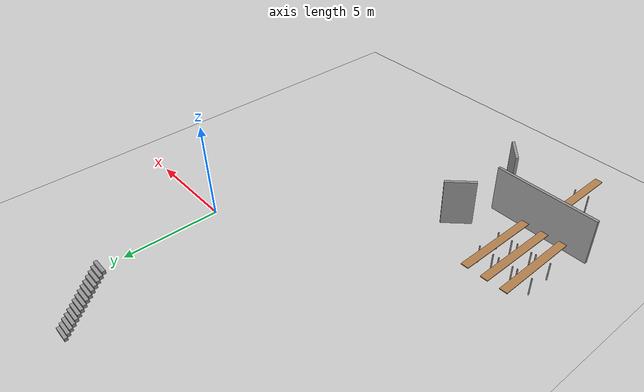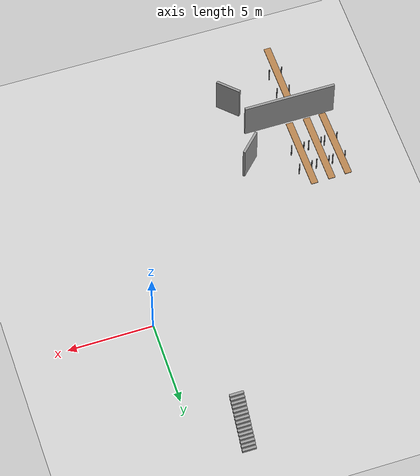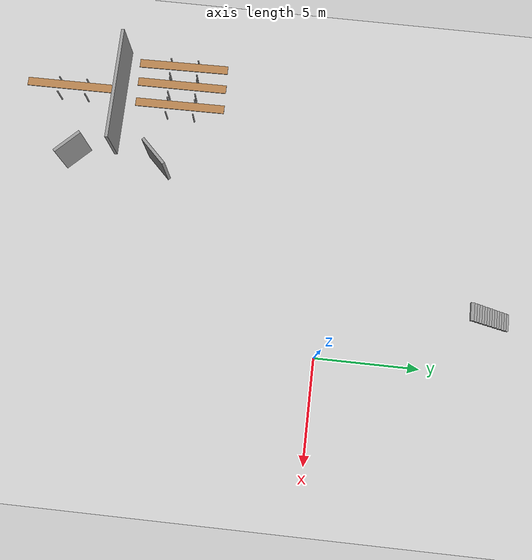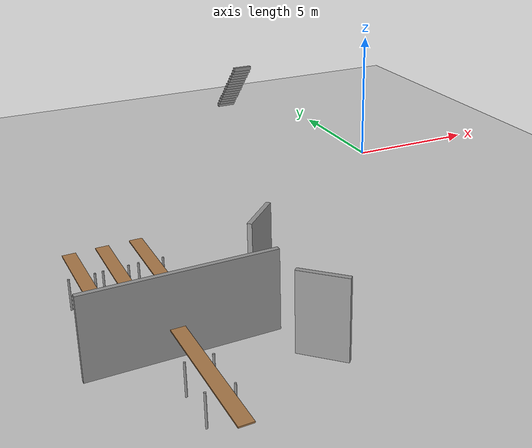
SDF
<sdf version="1.6">
 <world name="default">
  <model name="ground_plane">
   <static>1</static>
   <link name="link">
    <collision name="collision">
     <geometry><plane><normal>0 0 1</normal><size>100 100</size></plane></geometry>
     <surface><friction><ode><mu>100</mu><mu2>50</mu2></ode></friction></surface>
    </collision>
    <visual name="visual">
     <cast_shadows>0</cast_shadows>
     <geometry><plane><normal>0 0 1</normal><size>100 100</size></plane></geometry>
     <material>
      <script><uri>file://media/materials/scripts/gazebo.material</uri><name>Gazebo/Grey</name></script>
     </material>
    </visual>
   </link>
  </model>
  <model name="ca_vignal_1">
   <pose>-8.21048 -6.13752 0 0 -0 0</pose>
   <link name="Stairs_0">
    <visual name="Stairs_0_Visual_0">
     <pose>5.56857 15.1204 0.083333 0 -0 0</pose>
     <geometry><box><size>0.816 0.160476 0.166667</size></box></geometry>
     <material>
      <script><uri>file://media/materials/scripts/gazebo.material</uri><name>Gazebo/Grey</name></script>
      <ambient>1 1 1 1</ambient>
     </material>
    </visual>
    <collision name="Stairs_0_Collision_0">
     <geometry><box><size>0.816 0.160476 0.166667</size></box></geometry>
     <pose>5.56857 15.1204 0.083333 0 -0 0</pose>
    </collision>
    <visual name="Stairs_0_Visual_1">
     <pose>5.56857 14.96 0.25 0 -0 0</pose>
     <geometry><box><size>0.816 0.160476 0.166667</size></box></geometry>
     <material>
      <script><uri>file://media/materials/scripts/gazebo.material</uri><name>Gazebo/Grey</name></script>
      <ambient>1 1 1 1</ambient>
     </material>
    </visual>
    <collision name="Stairs_0_Collision_1">
     <geometry><box><size>0.816 0.160476 0.166667</size></box></geometry>
     <pose>5.56857 14.96 0.25 0 -0 0</pose>
    </collision>
    <visual name="Stairs_0_Visual_2">
     <pose>5.56857 14.7995 0.416667 0 -0 0</pose>
     <geometry><box><size>0.816 0.160476 0.166667</size></box></geometry>
     <material>
      <script><uri>file://media/materials/scripts/gazebo.material</uri><name>Gazebo/Grey</name></script>
      <ambient>1 1 1 1</ambient>
     </material>
    </visual>
    <collision name="Stairs_0_Collision_2">
     <geometry><box><size>0.816 0.160476 0.166667</size></box></geometry>
     <pose>5.56857 14.7995 0.416667 0 -0 0</pose>
    </collision>
    <visual name="Stairs_0_Visual_3">
     <pose>5.56857 14.639 0.583333 0 -0 0</pose>
     <geometry><box><size>0.816 0.160476 0.166667</size></box></geometry>
     <material>
      <script><uri>file://media/materials/scripts/gazebo.material</uri><name>Gazebo/Grey</name></script>
      <ambient>1 1 1 1</ambient>
     </material>
    </visual>
    <collision name="Stairs_0_Collision_3">
     <geometry><box><size>0.816 0.160476 0.166667</size></box></geometry>
     <pose>5.56857 14.639 0.583333 0 -0 0</pose>
    </collision>
    <visual name="Stairs_0_Visual_4">
     <pose>5.56857 14.4785 0.75 0 -0 0</pose>
     <geometry><box><size>0.816 0.160476 0.166667</size></box></geometry>
     <material>
      <script><uri>file://media/materials/scripts/gazebo.material</uri><name>Gazebo/Grey</name></script>
      <ambient>1 1 1 1</ambient>
     </material>
    </visual>
    <collision name="Stairs_0_Collision_4">
     <geometry><box><size>0.816 0.160476 0.166667</size></box></geometry>
     <pose>5.56857 14.4785 0.75 0 -0 0</pose>
    </collision>
    <visual name="Stairs_0_Visual_5">
     <pose>5.56857 14.3181 0.916667 0 -0 0</pose>
     <geometry><box><size>0.816 0.160476 0.166667</size></box></geometry>
     <material>
      <script><uri>file://media/materials/scripts/gazebo.material</uri><name>Gazebo/Grey</name></script>
      <ambient>1 1 1 1</ambient>
     </material>
    </visual>
    <collision name="Stairs_0_Collision_5">
     <geometry><box><size>0.816 0.160476 0.166667</size></box></geometry>
     <pose>5.56857 14.3181 0.916667 0 -0 0</pose>
    </collision>
    <visual name="Stairs_0_Visual_6">
     <pose>5.56857 14.1576 1.08333 0 -0 0</pose>
     <geometry><box><size>0.816 0.160476 0.166667</size></box></geometry>
     <material>
      <script><uri>file://media/materials/scripts/gazebo.material</uri><name>Gazebo/Grey</name></script>
      <ambient>1 1 1 1</ambient>
     </material>
    </visual>
    <collision name="Stairs_0_Collision_6">
     <geometry><box><size>0.816 0.160476 0.166667</size></box></geometry>
     <pose>5.56857 14.1576 1.08333 0 -0 0</pose>
    </collision>
    <visual name="Stairs_0_Visual_7">
     <pose>5.56857 13.9971 1.25 0 -0 0</pose>
     <geometry><box><size>0.816 0.160476 0.166667</size></box></geometry>
     <material>
      <script><uri>file://media/materials/scripts/gazebo.material</uri><name>Gazebo/Grey</name></script>
      <ambient>1 1 1 1</ambient>
     </material>
    </visual>
    <collision name="Stairs_0_Collision_7">
     <geometry><box><size>0.816 0.160476 0.166667</size></box></geometry>
     <pose>5.56857 13.9971 1.25 0 -0 0</pose>
    </collision>
    <visual name="Stairs_0_Visual_8">
     <pose>5.56857 13.8366 1.41667 0 -0 0</pose>
     <geometry><box><size>0.816 0.160476 0.166667</size></box></geometry>
     <material>
      <script><uri>file://media/materials/scripts/gazebo.material</uri><name>Gazebo/Grey</name></script>
      <ambient>1 1 1 1</ambient>
     </material>
    </visual>
    <collision name="Stairs_0_Collision_8">
     <geometry><box><size>0.816 0.160476 0.166667</size></box></geometry>
     <pose>5.56857 13.8366 1.41667 0 -0 0</pose>
    </collision>
    <visual name="Stairs_0_Visual_9">
     <pose>5.56857 13.6762 1.58333 0 -0 0</pose>
     <geometry><box><size>0.816 0.160476 0.166667</size></box></geometry>
     <material>
      <script><uri>file://media/materials/scripts/gazebo.material</uri><name>Gazebo/Grey</name></script>
      <ambient>1 1 1 1</ambient>
     </material>
    </visual>
    <collision name="Stairs_0_Collision_9">
     <geometry><box><size>0.816 0.160476 0.166667</size></box></geometry>
     <pose>5.56857 13.6762 1.58333 0 -0 0</pose>
    </collision>
    <visual name="Stairs_0_Visual_10">
     <pose>5.56857 13.5157 1.75 0 -0 0</pose>
     <geometry><box><size>0.816 0.160476 0.166667</size></box></geometry>
     <material>
      <script><uri>file://media/materials/scripts/gazebo.material</uri><name>Gazebo/Grey</name></script>
      <ambient>1 1 1 1</ambient>
     </material>
    </visual>
    <collision name="Stairs_0_Collision_10">
     <geometry><box><size>0.816 0.160476 0.166667</size></box></geometry>
     <pose>5.56857 13.5157 1.75 0 -0 0</pose>
    </collision>
    <visual name="Stairs_0_Visual_11">
     <pose>5.56857 13.3552 1.91667 0 -0 0</pose>
     <geometry><box><size>0.816 0.160476 0.166667</size></box></geometry>
     <material>
      <script><uri>file://media/materials/scripts/gazebo.material</uri><name>Gazebo/Grey</name></script>
      <ambient>1 1 1 1</ambient>
     </material>
    </visual>
    <collision name="Stairs_0_Collision_11">
     <geometry><box><size>0.816 0.160476 0.166667</size></box></geometry>
     <pose>5.56857 13.3552 1.91667 0 -0 0</pose>
    </collision>
    <visual name="Stairs_0_Visual_12">
     <pose>5.56857 13.1947 2.08333 0 -0 0</pose>
     <geometry><box><size>0.816 0.160476 0.166667</size></box></geometry>
     <material>
      <script><uri>file://media/materials/scripts/gazebo.material</uri><name>Gazebo/Grey</name></script>
      <ambient>1 1 1 1</ambient>
     </material>
    </visual>
    <collision name="Stairs_0_Collision_12">
     <geometry><box><size>0.816 0.160476 0.166667</size></box></geometry>
     <pose>5.56857 13.1947 2.08333 0 -0 0</pose>
    </collision>
    <visual name="Stairs_0_Visual_13">
     <pose>5.56857 13.0343 2.25 0 -0 0</pose>
     <geometry><box><size>0.816 0.160476 0.166667</size></box></geometry>
     <material>
      <script><uri>file://media/materials/scripts/gazebo.material</uri><name>Gazebo/Grey</name></script>
      <ambient>1 1 1 1</ambient>
     </material>
    </visual>
    <collision name="Stairs_0_Collision_13">
     <geometry><box><size>0.816 0.160476 0.166667</size></box></geometry>
     <pose>5.56857 13.0343 2.25 0 -0 0</pose>
    </collision>
    <visual name="Stairs_0_Visual_14">
     <pose>5.56857 12.8738 2.41667 0 -0 0</pose>
     <geometry><box><size>0.816 0.160476 0.166667</size></box></geometry>
     <material>
      <script><uri>file://media/materials/scripts/gazebo.material</uri><name>Gazebo/Grey</name></script>
      <ambient>1 1 1 1</ambient>
     </material>
    </visual>
    <collision name="Stairs_0_Collision_14">
     <geometry><box><size>0.816 0.160476 0.166667</size></box></geometry>
     <pose>5.56857 12.8738 2.41667 0 -0 0</pose>
    </collision>
   </link>
   <link name="Wall_12">
    <collision name="Wall_12_Collision">
     <geometry><box><size>5.5 0.15 2.5</size></box></geometry>
     <pose>0 0 1.25 0 -0 0</pose>
    </collision>
    <visual name="Wall_12_Visual">
     <pose>0 0 1.25 0 -0 0</pose>
     <geometry><box><size>5.5 0.15 2.5</size></box></geometry>
     <material>
      <script><uri>file://media/materials/scripts/gazebo.material</uri><name>Gazebo/Grey</name></script>
      <ambient>1 1 1 1</ambient>
     </material>
    </visual>
    <pose>-3.57241 -4.63113 0 0 -0 0</pose>
   </link>
   <link name="Wall_46">
    <collision name="Wall_46_Collision">
     <geometry><box><size>1.5 0.15 2.5</size></box></geometry>
     <pose>0 0 1.25 0 -0 0</pose>
    </collision>
    <visual name="Wall_46_Visual">
     <pose>0 0 1.25 0 -0 0</pose>
     <geometry><box><size>1.5 0.15 2.5</size></box></geometry>
     <material>
      <script><uri>file://media/materials/scripts/gazebo.material</uri><name>Gazebo/Grey</name></script>
      <ambient>1 1 1 1</ambient>
     </material>
    </visual>
    <pose>-0.411545 -6.42966 0 0 -0 2.35619</pose>
   </link>
   <link name="Wall_8">
    <collision name="Wall_8_Collision">
     <geometry><box><size>1.57222 0.15 2.5</size></box></geometry>
     <pose>0 0 1.25 0 -0 0</pose>
    </collision>
    <visual name="Wall_8_Visual">
     <pose>0 0 1.25 0 -0 0</pose>
     <geometry><box><size>1.57222 0.15 2.5</size></box></geometry>
     <material>
      <script><uri>file://media/materials/scripts/gazebo.material</uri><name>Gazebo/Grey</name></script>
      <ambient>1 1 1 1</ambient>
     </material>
    </visual>
    <pose>-0.370762 -2.34657 0 0 -0 0.787693</pose>
   </link>
   <static>1</static>
  </model>
  <model name="tablesclass_clone_2">
   <link name="link">
    <inertial>
     <inertia><ixx>0</ixx><ixy>0</ixy><ixz>0</ixz><iyy>0</iyy><iyz>0</iyz><izz>0</izz></inertia>
     <mass>1.73923</mass>
    </inertial>
    <visual name="front_right_leg">
     <pose>0.68 -0.38 0.5 0 -0 0</pose>
     <geometry><cylinder><radius>0.0324505</radius><length>1</length></cylinder></geometry>
     <material>
      <script><uri>file://media/materials/scripts/gazebo.material</uri><name>Gazebo/Grey</name></script>
      <ambient>0.3 0.3 0.3 1</ambient>
      <diffuse>0.7 0.7 0.7 1</diffuse>
      <specular>0.01 0.01 0.01 1</specular>
      <emissive>0 0 0 1</emissive>
     </material>
    </visual>
    <visual name="back_left_leg">
     <pose>-0.68 0.38 0.5 0 -0 0</pose>
     <geometry><cylinder><radius>0.0324505</radius><length>1</length></cylinder></geometry>
     <material>
      <script><uri>file://media/materials/scripts/gazebo.material</uri><name>Gazebo/Grey</name></script>
      <ambient>0.3 0.3 0.3 1</ambient>
      <diffuse>0.7 0.7 0.7 1</diffuse>
      <specular>0.01 0.01 0.01 1</specular>
      <emissive>0 0 0 1</emissive>
     </material>
    </visual>
    <visual name="front_left_leg">
     <pose>0.68 0.38 0.5 0 -0 0</pose>
     <geometry><cylinder><radius>0.0324505</radius><length>1</length></cylinder></geometry>
     <material>
      <script><uri>file://media/materials/scripts/gazebo.material</uri><name>Gazebo/Grey</name></script>
      <ambient>0.3 0.3 0.3 1</ambient>
      <diffuse>0.7 0.7 0.7 1</diffuse>
      <specular>0.01 0.01 0.01 1</specular>
      <emissive>0 0 0 1</emissive>
     </material>
    </visual>
    <visual name="visual1">
     <pose>0 0 1 0 -0 0</pose>
     <geometry><box><size>4.38513 0.412326 0.04</size></box></geometry>
     <material>
      <script><uri>file://media/materials/scripts/gazebo.material</uri><name>Gazebo/Wood</name></script>
      <ambient>1 1 1 1</ambient>
      <diffuse>1 1 1 1</diffuse>
      <specular>0.2 0.2 0.2 1</specular>
      <emissive>0 0 0 1</emissive>
     </material>
    </visual>
    <visual name="back_right_leg">
     <pose>-0.68 -0.38 0.5 0 -0 0</pose>
     <geometry><cylinder><radius>0.0324505</radius><length>1</length></cylinder></geometry>
     <material>
      <script><uri>file://media/materials/scripts/gazebo.material</uri><name>Gazebo/Grey</name></script>
      <ambient>0.3 0.3 0.3 1</ambient>
      <diffuse>0.7 0.7 0.7 1</diffuse>
      <specular>0.01 0.01 0.01 1</specular>
      <emissive>0 0 0 1</emissive>
     </material>
    </visual>
    <collision name="front_left_leg">
     <pose>0.68 0.38 0.5 0 -0 0</pose>
     <geometry><cylinder><radius>0.03245</radius><length>1</length></cylinder></geometry>
     <surface>
      <friction>
       <ode><mu>1</mu><mu2>1</mu2><fdir1>0 0 0</fdir1><slip1>0</slip1><slip2>0</slip2></ode>
       <torsional>
        <coefficient>1</coefficient>
        <patch_radius>0</patch_radius>
        <surface_radius>0</surface_radius>
        <use_patch_radius>1</use_patch_radius>
        <ode><slip>0</slip></ode>
       </torsional>
      </friction>
      <bounce><restitution_coefficient>0</restitution_coefficient><threshold>1e+06</threshold></bounce>
      <contact>
       <collide_without_contact>0</collide_without_contact>
       <collide_without_contact_bitmask>1</collide_without_contact_bitmask>
       <collide_bitmask>1</collide_bitmask>
       <ode>
        <soft_cfm>0</soft_cfm>
        <soft_erp>0.2</soft_erp>
        <kp>1e+13</kp>
        <kd>1</kd>
        <max_vel>0.01</max_vel>
        <min_depth>0</min_depth>
       </ode>
       <bullet>
        <split_impulse>1</split_impulse>
        <split_impulse_penetration_threshold>-0.01</split_impulse_penetration_threshold>
        <soft_cfm>0</soft_cfm>
        <soft_erp>0.2</soft_erp>
        <kp>1e+13</kp>
        <kd>1</kd>
       </bullet>
      </contact>
     </surface>
    </collision>
    <collision name="front_right_leg">
     <pose>0.68 -0.38 0.5 0 -0 0</pose>
     <geometry><cylinder><radius>0.03245</radius><length>1</length></cylinder></geometry>
     <surface>
      <friction>
       <ode><mu>1</mu><mu2>1</mu2><fdir1>0 0 0</fdir1><slip1>0</slip1><slip2>0</slip2></ode>
       <torsional>
        <coefficient>1</coefficient>
        <patch_radius>0</patch_radius>
        <surface_radius>0</surface_radius>
        <use_patch_radius>1</use_patch_radius>
        <ode><slip>0</slip></ode>
       </torsional>
      </friction>
      <bounce><restitution_coefficient>0</restitution_coefficient><threshold>1e+06</threshold></bounce>
      <contact>
       <collide_without_contact>0</collide_without_contact>
       <collide_without_contact_bitmask>1</collide_without_contact_bitmask>
       <collide_bitmask>1</collide_bitmask>
       <ode>
        <soft_cfm>0</soft_cfm>
        <soft_erp>0.2</soft_erp>
        <kp>1e+13</kp>
        <kd>1</kd>
        <max_vel>0.01</max_vel>
        <min_depth>0</min_depth>
       </ode>
       <bullet>
        <split_impulse>1</split_impulse>
        <split_impulse_penetration_threshold>-0.01</split_impulse_penetration_threshold>
        <soft_cfm>0</soft_cfm>
        <soft_erp>0.2</soft_erp>
        <kp>1e+13</kp>
        <kd>1</kd>
       </bullet>
      </contact>
     </surface>
    </collision>
    <collision name="back_left_leg">
     <pose>-0.68 0.38 0.5 0 -0 0</pose>
     <geometry><cylinder><radius>0.03245</radius><length>1</length></cylinder></geometry>
     <surface>
      <friction>
       <ode><mu>1</mu><mu2>1</mu2><fdir1>0 0 0</fdir1><slip1>0</slip1><slip2>0</slip2></ode>
       <torsional>
        <coefficient>1</coefficient>
        <patch_radius>0</patch_radius>
        <surface_radius>0</surface_radius>
        <use_patch_radius>1</use_patch_radius>
        <ode><slip>0</slip></ode>
       </torsional>
      </friction>
      <bounce><restitution_coefficient>0</restitution_coefficient><threshold>1e+06</threshold></bounce>
      <contact>
       <collide_without_contact>0</collide_without_contact>
       <collide_without_contact_bitmask>1</collide_without_contact_bitmask>
       <collide_bitmask>1</collide_bitmask>
       <ode>
        <soft_cfm>0</soft_cfm>
        <soft_erp>0.2</soft_erp>
        <kp>1e+13</kp>
        <kd>1</kd>
        <max_vel>0.01</max_vel>
        <min_depth>0</min_depth>
       </ode>
       <bullet>
        <split_impulse>1</split_impulse>
        <split_impulse_penetration_threshold>-0.01</split_impulse_penetration_threshold>
        <soft_cfm>0</soft_cfm>
        <soft_erp>0.2</soft_erp>
        <kp>1e+13</kp>
        <kd>1</kd>
       </bullet>
      </contact>
     </surface>
    </collision>
    <collision name="back_right_leg">
     <pose>-0.68 -0.38 0.5 0 -0 0</pose>
     <geometry><cylinder><radius>0.03245</radius><length>1</length></cylinder></geometry>
     <surface>
      <friction>
       <ode><mu>1</mu><mu2>1</mu2><fdir1>0 0 0</fdir1><slip1>0</slip1><slip2>0</slip2></ode>
       <torsional>
        <coefficient>1</coefficient>
        <patch_radius>0</patch_radius>
        <surface_radius>0</surface_radius>
        <use_patch_radius>1</use_patch_radius>
        <ode><slip>0</slip></ode>
       </torsional>
      </friction>
      <bounce><restitution_coefficient>0</restitution_coefficient><threshold>1e+06</threshold></bounce>
      <contact>
       <collide_without_contact>0</collide_without_contact>
       <collide_without_contact_bitmask>1</collide_without_contact_bitmask>
       <collide_bitmask>1</collide_bitmask>
       <ode>
        <soft_cfm>0</soft_cfm>
        <soft_erp>0.2</soft_erp>
        <kp>1e+13</kp>
        <kd>1</kd>
        <max_vel>0.01</max_vel>
        <min_depth>0</min_depth>
       </ode>
       <bullet>
        <split_impulse>1</split_impulse>
        <split_impulse_penetration_threshold>-0.01</split_impulse_penetration_threshold>
        <soft_cfm>0</soft_cfm>
        <soft_erp>0.2</soft_erp>
        <kp>1e+13</kp>
        <kd>1</kd>
       </bullet>
      </contact>
     </surface>
    </collision>
    <collision name="surface">
     <pose>0 0 1 0 -0 0</pose>
     <geometry><box><size>4.69836 0.412326 0.03</size></box></geometry>
     <surface>
      <friction>
       <ode><mu>0.6</mu><mu2>0.6</mu2><fdir1>0 0 0</fdir1><slip1>0</slip1><slip2>0</slip2></ode>
       <torsional>
        <coefficient>1</coefficient>
        <patch_radius>0</patch_radius>
        <surface_radius>0</surface_radius>
        <use_patch_radius>1</use_patch_radius>
        <ode><slip>0</slip></ode>
       </torsional>
      </friction>
      <bounce><restitution_coefficient>0</restitution_coefficient><threshold>1e+06</threshold></bounce>
      <contact>
       <collide_without_contact>0</collide_without_contact>
       <collide_without_contact_bitmask>1</collide_without_contact_bitmask>
       <collide_bitmask>1</collide_bitmask>
       <ode>
        <soft_cfm>0</soft_cfm>
        <soft_erp>0.2</soft_erp>
        <kp>1e+13</kp>
        <kd>1</kd>
        <max_vel>0.01</max_vel>
        <min_depth>0</min_depth>
       </ode>
       <bullet>
        <split_impulse>1</split_impulse>
        <split_impulse_penetration_threshold>-0.01</split_impulse_penetration_threshold>
        <soft_cfm>0</soft_cfm>
        <soft_erp>0.2</soft_erp>
        <kp>1e+13</kp>
        <kd>1</kd>
       </bullet>
      </contact>
     </surface>
    </collision>
   </link>
   <static>0</static>
   <pose>-12.0259 -13.2197 0.005772 0 -0.008101 -1.56179</pose>
  </model>
  <model name="tablesclass_clone_3">
   <link name="link">
    <inertial>
     <inertia><ixx>0</ixx><ixy>0</ixy><ixz>0</ixz><iyy>0</iyy><iyz>0</iyz><izz>0</izz></inertia>
     <mass>1.73923</mass>
    </inertial>
    <visual name="front_right_leg">
     <pose>0.68 -0.38 0.5 0 -0 0</pose>
     <geometry><cylinder><radius>0.0324505</radius><length>1</length></cylinder></geometry>
     <material>
      <script><uri>file://media/materials/scripts/gazebo.material</uri><name>Gazebo/Grey</name></script>
      <ambient>0.3 0.3 0.3 1</ambient>
      <diffuse>0.7 0.7 0.7 1</diffuse>
      <specular>0.01 0.01 0.01 1</specular>
      <emissive>0 0 0 1</emissive>
     </material>
    </visual>
    <visual name="back_left_leg">
     <pose>-0.68 0.38 0.5 0 -0 0</pose>
     <geometry><cylinder><radius>0.0324505</radius><length>1</length></cylinder></geometry>
     <material>
      <script><uri>file://media/materials/scripts/gazebo.material</uri><name>Gazebo/Grey</name></script>
      <ambient>0.3 0.3 0.3 1</ambient>
      <diffuse>0.7 0.7 0.7 1</diffuse>
      <specular>0.01 0.01 0.01 1</specular>
      <emissive>0 0 0 1</emissive>
     </material>
    </visual>
    <visual name="front_left_leg">
     <pose>0.68 0.38 0.5 0 -0 0</pose>
     <geometry><cylinder><radius>0.0324505</radius><length>1</length></cylinder></geometry>
     <material>
      <script><uri>file://media/materials/scripts/gazebo.material</uri><name>Gazebo/Grey</name></script>
      <ambient>0.3 0.3 0.3 1</ambient>
      <diffuse>0.7 0.7 0.7 1</diffuse>
      <specular>0.01 0.01 0.01 1</specular>
      <emissive>0 0 0 1</emissive>
     </material>
    </visual>
    <visual name="visual1">
     <pose>0 0 1 0 -0 0</pose>
     <geometry><box><size>4.38513 0.412326 0.04</size></box></geometry>
     <material>
      <script><uri>file://media/materials/scripts/gazebo.material</uri><name>Gazebo/Wood</name></script>
      <ambient>1 1 1 1</ambient>
      <diffuse>1 1 1 1</diffuse>
      <specular>0.2 0.2 0.2 1</specular>
      <emissive>0 0 0 1</emissive>
     </material>
    </visual>
    <visual name="back_right_leg">
     <pose>-0.68 -0.38 0.5 0 -0 0</pose>
     <geometry><cylinder><radius>0.0324505</radius><length>1</length></cylinder></geometry>
     <material>
      <script><uri>file://media/materials/scripts/gazebo.material</uri><name>Gazebo/Grey</name></script>
      <ambient>0.3 0.3 0.3 1</ambient>
      <diffuse>0.7 0.7 0.7 1</diffuse>
      <specular>0.01 0.01 0.01 1</specular>
      <emissive>0 0 0 1</emissive>
     </material>
    </visual>
    <collision name="front_left_leg">
     <pose>0.68 0.38 0.5 0 -0 0</pose>
     <geometry><cylinder><radius>0.03245</radius><length>1</length></cylinder></geometry>
     <surface>
      <friction>
       <ode><mu>1</mu><mu2>1</mu2><fdir1>0 0 0</fdir1><slip1>0</slip1><slip2>0</slip2></ode>
       <torsional>
        <coefficient>1</coefficient>
        <patch_radius>0</patch_radius>
        <surface_radius>0</surface_radius>
        <use_patch_radius>1</use_patch_radius>
        <ode><slip>0</slip></ode>
       </torsional>
      </friction>
      <bounce><restitution_coefficient>0</restitution_coefficient><threshold>1e+06</threshold></bounce>
      <contact>
       <collide_without_contact>0</collide_without_contact>
       <collide_without_contact_bitmask>1</collide_without_contact_bitmask>
       <collide_bitmask>1</collide_bitmask>
       <ode>
        <soft_cfm>0</soft_cfm>
        <soft_erp>0.2</soft_erp>
        <kp>1e+13</kp>
        <kd>1</kd>
        <max_vel>0.01</max_vel>
        <min_depth>0</min_depth>
       </ode>
       <bullet>
        <split_impulse>1</split_impulse>
        <split_impulse_penetration_threshold>-0.01</split_impulse_penetration_threshold>
        <soft_cfm>0</soft_cfm>
        <soft_erp>0.2</soft_erp>
        <kp>1e+13</kp>
        <kd>1</kd>
       </bullet>
      </contact>
     </surface>
    </collision>
    <collision name="front_right_leg">
     <pose>0.68 -0.38 0.5 0 -0 0</pose>
     <geometry><cylinder><radius>0.03245</radius><length>1</length></cylinder></geometry>
     <surface>
      <friction>
       <ode><mu>1</mu><mu2>1</mu2><fdir1>0 0 0</fdir1><slip1>0</slip1><slip2>0</slip2></ode>
       <torsional>
        <coefficient>1</coefficient>
        <patch_radius>0</patch_radius>
        <surface_radius>0</surface_radius>
        <use_patch_radius>1</use_patch_radius>
        <ode><slip>0</slip></ode>
       </torsional>
      </friction>
      <bounce><restitution_coefficient>0</restitution_coefficient><threshold>1e+06</threshold></bounce>
      <contact>
       <collide_without_contact>0</collide_without_contact>
       <collide_without_contact_bitmask>1</collide_without_contact_bitmask>
       <collide_bitmask>1</collide_bitmask>
       <ode>
        <soft_cfm>0</soft_cfm>
        <soft_erp>0.2</soft_erp>
        <kp>1e+13</kp>
        <kd>1</kd>
        <max_vel>0.01</max_vel>
        <min_depth>0</min_depth>
       </ode>
       <bullet>
        <split_impulse>1</split_impulse>
        <split_impulse_penetration_threshold>-0.01</split_impulse_penetration_threshold>
        <soft_cfm>0</soft_cfm>
        <soft_erp>0.2</soft_erp>
        <kp>1e+13</kp>
        <kd>1</kd>
       </bullet>
      </contact>
     </surface>
    </collision>
    <collision name="back_left_leg">
     <pose>-0.68 0.38 0.5 0 -0 0</pose>
     <geometry><cylinder><radius>0.03245</radius><length>1</length></cylinder></geometry>
     <surface>
      <friction>
       <ode><mu>1</mu><mu2>1</mu2><fdir1>0 0 0</fdir1><slip1>0</slip1><slip2>0</slip2></ode>
       <torsional>
        <coefficient>1</coefficient>
        <patch_radius>0</patch_radius>
        <surface_radius>0</surface_radius>
        <use_patch_radius>1</use_patch_radius>
        <ode><slip>0</slip></ode>
       </torsional>
      </friction>
      <bounce><restitution_coefficient>0</restitution_coefficient><threshold>1e+06</threshold></bounce>
      <contact>
       <collide_without_contact>0</collide_without_contact>
       <collide_without_contact_bitmask>1</collide_without_contact_bitmask>
       <collide_bitmask>1</collide_bitmask>
       <ode>
        <soft_cfm>0</soft_cfm>
        <soft_erp>0.2</soft_erp>
        <kp>1e+13</kp>
        <kd>1</kd>
        <max_vel>0.01</max_vel>
        <min_depth>0</min_depth>
       </ode>
       <bullet>
        <split_impulse>1</split_impulse>
        <split_impulse_penetration_threshold>-0.01</split_impulse_penetration_threshold>
        <soft_cfm>0</soft_cfm>
        <soft_erp>0.2</soft_erp>
        <kp>1e+13</kp>
        <kd>1</kd>
       </bullet>
      </contact>
     </surface>
    </collision>
    <collision name="back_right_leg">
     <pose>-0.68 -0.38 0.5 0 -0 0</pose>
     <geometry><cylinder><radius>0.03245</radius><length>1</length></cylinder></geometry>
     <surface>
      <friction>
       <ode><mu>1</mu><mu2>1</mu2><fdir1>0 0 0</fdir1><slip1>0</slip1><slip2>0</slip2></ode>
       <torsional>
        <coefficient>1</coefficient>
        <patch_radius>0</patch_radius>
        <surface_radius>0</surface_radius>
        <use_patch_radius>1</use_patch_radius>
        <ode><slip>0</slip></ode>
       </torsional>
      </friction>
      <bounce><restitution_coefficient>0</restitution_coefficient><threshold>1e+06</threshold></bounce>
      <contact>
       <collide_without_contact>0</collide_without_contact>
       <collide_without_contact_bitmask>1</collide_without_contact_bitmask>
       <collide_bitmask>1</collide_bitmask>
       <ode>
        <soft_cfm>0</soft_cfm>
        <soft_erp>0.2</soft_erp>
        <kp>1e+13</kp>
        <kd>1</kd>
        <max_vel>0.01</max_vel>
        <min_depth>0</min_depth>
       </ode>
       <bullet>
        <split_impulse>1</split_impulse>
        <split_impulse_penetration_threshold>-0.01</split_impulse_penetration_threshold>
        <soft_cfm>0</soft_cfm>
        <soft_erp>0.2</soft_erp>
        <kp>1e+13</kp>
        <kd>1</kd>
       </bullet>
      </contact>
     </surface>
    </collision>
    <collision name="surface">
     <pose>0 0 1 0 -0 0</pose>
     <geometry><box><size>4.69836 0.412326 0.03</size></box></geometry>
     <surface>
      <friction>
       <ode><mu>0.6</mu><mu2>0.6</mu2><fdir1>0 0 0</fdir1><slip1>0</slip1><slip2>0</slip2></ode>
       <torsional>
        <coefficient>1</coefficient>
        <patch_radius>0</patch_radius>
        <surface_radius>0</surface_radius>
        <use_patch_radius>1</use_patch_radius>
        <ode><slip>0</slip></ode>
       </torsional>
      </friction>
      <bounce><restitution_coefficient>0</restitution_coefficient><threshold>1e+06</threshold></bounce>
      <contact>
       <collide_without_contact>0</collide_without_contact>
       <collide_without_contact_bitmask>1</collide_without_contact_bitmask>
       <collide_bitmask>1</collide_bitmask>
       <ode>
        <soft_cfm>0</soft_cfm>
        <soft_erp>0.2</soft_erp>
        <kp>1e+13</kp>
        <kd>1</kd>
        <max_vel>0.01</max_vel>
        <min_depth>0</min_depth>
       </ode>
       <bullet>
        <split_impulse>1</split_impulse>
        <split_impulse_penetration_threshold>-0.01</split_impulse_penetration_threshold>
        <soft_cfm>0</soft_cfm>
        <soft_erp>0.2</soft_erp>
        <kp>1e+13</kp>
        <kd>1</kd>
       </bullet>
      </contact>
     </surface>
    </collision>
   </link>
   <static>0</static>
   <pose>-13.5934 -7.82333 1e-06 0 -1e-06 -1.55455</pose>
  </model>
  <model name="tablesclass_clone_5">
   <link name="link">
    <inertial>
     <inertia><ixx>0</ixx><ixy>0</ixy><ixz>0</ixz><iyy>0</iyy><iyz>0</iyz><izz>0</izz></inertia>
     <mass>1.73923</mass>
    </inertial>
    <visual name="front_right_leg">
     <pose>0.68 -0.38 0.5 0 -0 0</pose>
     <geometry><cylinder><radius>0.0324505</radius><length>1</length></cylinder></geometry>
     <material>
      <script><uri>file://media/materials/scripts/gazebo.material</uri><name>Gazebo/Grey</name></script>
      <ambient>0.3 0.3 0.3 1</ambient>
      <diffuse>0.7 0.7 0.7 1</diffuse>
      <specular>0.01 0.01 0.01 1</specular>
      <emissive>0 0 0 1</emissive>
     </material>
    </visual>
    <visual name="back_left_leg">
     <pose>-0.68 0.38 0.5 0 -0 0</pose>
     <geometry><cylinder><radius>0.0324505</radius><length>1</length></cylinder></geometry>
     <material>
      <script><uri>file://media/materials/scripts/gazebo.material</uri><name>Gazebo/Grey</name></script>
      <ambient>0.3 0.3 0.3 1</ambient>
      <diffuse>0.7 0.7 0.7 1</diffuse>
      <specular>0.01 0.01 0.01 1</specular>
      <emissive>0 0 0 1</emissive>
     </material>
    </visual>
    <visual name="front_left_leg">
     <pose>0.68 0.38 0.5 0 -0 0</pose>
     <geometry><cylinder><radius>0.0324505</radius><length>1</length></cylinder></geometry>
     <material>
      <script><uri>file://media/materials/scripts/gazebo.material</uri><name>Gazebo/Grey</name></script>
      <ambient>0.3 0.3 0.3 1</ambient>
      <diffuse>0.7 0.7 0.7 1</diffuse>
      <specular>0.01 0.01 0.01 1</specular>
      <emissive>0 0 0 1</emissive>
     </material>
    </visual>
    <visual name="visual1">
     <pose>0 0 1 0 -0 0</pose>
     <geometry><box><size>4.38513 0.412326 0.04</size></box></geometry>
     <material>
      <script><uri>file://media/materials/scripts/gazebo.material</uri><name>Gazebo/Wood</name></script>
      <ambient>1 1 1 1</ambient>
      <diffuse>1 1 1 1</diffuse>
      <specular>0.2 0.2 0.2 1</specular>
      <emissive>0 0 0 1</emissive>
     </material>
    </visual>
    <visual name="back_right_leg">
     <pose>-0.68 -0.38 0.5 0 -0 0</pose>
     <geometry><cylinder><radius>0.0324505</radius><length>1</length></cylinder></geometry>
     <material>
      <script><uri>file://media/materials/scripts/gazebo.material</uri><name>Gazebo/Grey</name></script>
      <ambient>0.3 0.3 0.3 1</ambient>
      <diffuse>0.7 0.7 0.7 1</diffuse>
      <specular>0.01 0.01 0.01 1</specular>
      <emissive>0 0 0 1</emissive>
     </material>
    </visual>
    <collision name="front_left_leg">
     <pose>0.68 0.38 0.5 0 -0 0</pose>
     <geometry><cylinder><radius>0.03245</radius><length>1</length></cylinder></geometry>
     <surface>
      <friction>
       <ode><mu>1</mu><mu2>1</mu2><fdir1>0 0 0</fdir1><slip1>0</slip1><slip2>0</slip2></ode>
       <torsional>
        <coefficient>1</coefficient>
        <patch_radius>0</patch_radius>
        <surface_radius>0</surface_radius>
        <use_patch_radius>1</use_patch_radius>
        <ode><slip>0</slip></ode>
       </torsional>
      </friction>
      <bounce><restitution_coefficient>0</restitution_coefficient><threshold>1e+06</threshold></bounce>
      <contact>
       <collide_without_contact>0</collide_without_contact>
       <collide_without_contact_bitmask>1</collide_without_contact_bitmask>
       <collide_bitmask>1</collide_bitmask>
       <ode>
        <soft_cfm>0</soft_cfm>
        <soft_erp>0.2</soft_erp>
        <kp>1e+13</kp>
        <kd>1</kd>
        <max_vel>0.01</max_vel>
        <min_depth>0</min_depth>
       </ode>
       <bullet>
        <split_impulse>1</split_impulse>
        <split_impulse_penetration_threshold>-0.01</split_impulse_penetration_threshold>
        <soft_cfm>0</soft_cfm>
        <soft_erp>0.2</soft_erp>
        <kp>1e+13</kp>
        <kd>1</kd>
       </bullet>
      </contact>
     </surface>
    </collision>
    <collision name="front_right_leg">
     <pose>0.68 -0.38 0.5 0 -0 0</pose>
     <geometry><cylinder><radius>0.03245</radius><length>1</length></cylinder></geometry>
     <surface>
      <friction>
       <ode><mu>1</mu><mu2>1</mu2><fdir1>0 0 0</fdir1><slip1>0</slip1><slip2>0</slip2></ode>
       <torsional>
        <coefficient>1</coefficient>
        <patch_radius>0</patch_radius>
        <surface_radius>0</surface_radius>
        <use_patch_radius>1</use_patch_radius>
        <ode><slip>0</slip></ode>
       </torsional>
      </friction>
      <bounce><restitution_coefficient>0</restitution_coefficient><threshold>1e+06</threshold></bounce>
      <contact>
       <collide_without_contact>0</collide_without_contact>
       <collide_without_contact_bitmask>1</collide_without_contact_bitmask>
       <collide_bitmask>1</collide_bitmask>
       <ode>
        <soft_cfm>0</soft_cfm>
        <soft_erp>0.2</soft_erp>
        <kp>1e+13</kp>
        <kd>1</kd>
        <max_vel>0.01</max_vel>
        <min_depth>0</min_depth>
       </ode>
       <bullet>
        <split_impulse>1</split_impulse>
        <split_impulse_penetration_threshold>-0.01</split_impulse_penetration_threshold>
        <soft_cfm>0</soft_cfm>
        <soft_erp>0.2</soft_erp>
        <kp>1e+13</kp>
        <kd>1</kd>
       </bullet>
      </contact>
     </surface>
    </collision>
    <collision name="back_left_leg">
     <pose>-0.68 0.38 0.5 0 -0 0</pose>
     <geometry><cylinder><radius>0.03245</radius><length>1</length></cylinder></geometry>
     <surface>
      <friction>
       <ode><mu>1</mu><mu2>1</mu2><fdir1>0 0 0</fdir1><slip1>0</slip1><slip2>0</slip2></ode>
       <torsional>
        <coefficient>1</coefficient>
        <patch_radius>0</patch_radius>
        <surface_radius>0</surface_radius>
        <use_patch_radius>1</use_patch_radius>
        <ode><slip>0</slip></ode>
       </torsional>
      </friction>
      <bounce><restitution_coefficient>0</restitution_coefficient><threshold>1e+06</threshold></bounce>
      <contact>
       <collide_without_contact>0</collide_without_contact>
       <collide_without_contact_bitmask>1</collide_without_contact_bitmask>
       <collide_bitmask>1</collide_bitmask>
       <ode>
        <soft_cfm>0</soft_cfm>
        <soft_erp>0.2</soft_erp>
        <kp>1e+13</kp>
        <kd>1</kd>
        <max_vel>0.01</max_vel>
        <min_depth>0</min_depth>
       </ode>
       <bullet>
        <split_impulse>1</split_impulse>
        <split_impulse_penetration_threshold>-0.01</split_impulse_penetration_threshold>
        <soft_cfm>0</soft_cfm>
        <soft_erp>0.2</soft_erp>
        <kp>1e+13</kp>
        <kd>1</kd>
       </bullet>
      </contact>
     </surface>
    </collision>
    <collision name="back_right_leg">
     <pose>-0.68 -0.38 0.5 0 -0 0</pose>
     <geometry><cylinder><radius>0.03245</radius><length>1</length></cylinder></geometry>
     <surface>
      <friction>
       <ode><mu>1</mu><mu2>1</mu2><fdir1>0 0 0</fdir1><slip1>0</slip1><slip2>0</slip2></ode>
       <torsional>
        <coefficient>1</coefficient>
        <patch_radius>0</patch_radius>
        <surface_radius>0</surface_radius>
        <use_patch_radius>1</use_patch_radius>
        <ode><slip>0</slip></ode>
       </torsional>
      </friction>
      <bounce><restitution_coefficient>0</restitution_coefficient><threshold>1e+06</threshold></bounce>
      <contact>
       <collide_without_contact>0</collide_without_contact>
       <collide_without_contact_bitmask>1</collide_without_contact_bitmask>
       <collide_bitmask>1</collide_bitmask>
       <ode>
        <soft_cfm>0</soft_cfm>
        <soft_erp>0.2</soft_erp>
        <kp>1e+13</kp>
        <kd>1</kd>
        <max_vel>0.01</max_vel>
        <min_depth>0</min_depth>
       </ode>
       <bullet>
        <split_impulse>1</split_impulse>
        <split_impulse_penetration_threshold>-0.01</split_impulse_penetration_threshold>
        <soft_cfm>0</soft_cfm>
        <soft_erp>0.2</soft_erp>
        <kp>1e+13</kp>
        <kd>1</kd>
       </bullet>
      </contact>
     </surface>
    </collision>
    <collision name="surface">
     <pose>0 0 1 0 -0 0</pose>
     <geometry><box><size>4.69836 0.412326 0.03</size></box></geometry>
     <surface>
      <friction>
       <ode><mu>0.6</mu><mu2>0.6</mu2><fdir1>0 0 0</fdir1><slip1>0</slip1><slip2>0</slip2></ode>
       <torsional>
        <coefficient>1</coefficient>
        <patch_radius>0</patch_radius>
        <surface_radius>0</surface_radius>
        <use_patch_radius>1</use_patch_radius>
        <ode><slip>0</slip></ode>
       </torsional>
      </friction>
      <bounce><restitution_coefficient>0</restitution_coefficient><threshold>1e+06</threshold></bounce>
      <contact>
       <collide_without_contact>0</collide_without_contact>
       <collide_without_contact_bitmask>1</collide_without_contact_bitmask>
       <collide_bitmask>1</collide_bitmask>
       <ode>
        <soft_cfm>0</soft_cfm>
        <soft_erp>0.2</soft_erp>
        <kp>1e+13</kp>
        <kd>1</kd>
        <max_vel>0.01</max_vel>
        <min_depth>0</min_depth>
       </ode>
       <bullet>
        <split_impulse>1</split_impulse>
        <split_impulse_penetration_threshold>-0.01</split_impulse_penetration_threshold>
        <soft_cfm>0</soft_cfm>
        <soft_erp>0.2</soft_erp>
        <kp>1e+13</kp>
        <kd>1</kd>
       </bullet>
      </contact>
     </surface>
    </collision>
   </link>
   <static>0</static>
   <pose>-12.5951 -7.78807 0.000168 -2e-06 -0.000559 -1.56407</pose>
  </model>
  <model name="tablesclass_clone_7">
   <link name="link">
    <inertial>
     <inertia><ixx>0</ixx><ixy>0</ixy><ixz>0</ixz><iyy>0</iyy><iyz>0</iyz><izz>0</izz></inertia>
     <mass>1.73923</mass>
    </inertial>
    <visual name="front_right_leg">
     <pose>0.68 -0.38 0.5 0 -0 0</pose>
     <geometry><cylinder><radius>0.0324505</radius><length>1</length></cylinder></geometry>
     <material>
      <script><uri>file://media/materials/scripts/gazebo.material</uri><name>Gazebo/Grey</name></script>
      <ambient>0.3 0.3 0.3 1</ambient>
      <diffuse>0.7 0.7 0.7 1</diffuse>
      <specular>0.01 0.01 0.01 1</specular>
      <emissive>0 0 0 1</emissive>
     </material>
    </visual>
    <visual name="back_left_leg">
     <pose>-0.68 0.38 0.5 0 -0 0</pose>
     <geometry><cylinder><radius>0.0324505</radius><length>1</length></cylinder></geometry>
     <material>
      <script><uri>file://media/materials/scripts/gazebo.material</uri><name>Gazebo/Grey</name></script>
      <ambient>0.3 0.3 0.3 1</ambient>
      <diffuse>0.7 0.7 0.7 1</diffuse>
      <specular>0.01 0.01 0.01 1</specular>
      <emissive>0 0 0 1</emissive>
     </material>
    </visual>
    <visual name="front_left_leg">
     <pose>0.68 0.38 0.5 0 -0 0</pose>
     <geometry><cylinder><radius>0.0324505</radius><length>1</length></cylinder></geometry>
     <material>
      <script><uri>file://media/materials/scripts/gazebo.material</uri><name>Gazebo/Grey</name></script>
      <ambient>0.3 0.3 0.3 1</ambient>
      <diffuse>0.7 0.7 0.7 1</diffuse>
      <specular>0.01 0.01 0.01 1</specular>
      <emissive>0 0 0 1</emissive>
     </material>
    </visual>
    <visual name="visual1">
     <pose>0 0 1 0 -0 0</pose>
     <geometry><box><size>4.38513 0.412326 0.04</size></box></geometry>
     <material>
      <script><uri>file://media/materials/scripts/gazebo.material</uri><name>Gazebo/Wood</name></script>
      <ambient>1 1 1 1</ambient>
      <diffuse>1 1 1 1</diffuse>
      <specular>0.2 0.2 0.2 1</specular>
      <emissive>0 0 0 1</emissive>
     </material>
    </visual>
    <visual name="back_right_leg">
     <pose>-0.68 -0.38 0.5 0 -0 0</pose>
     <geometry><cylinder><radius>0.0324505</radius><length>1</length></cylinder></geometry>
     <material>
      <script><uri>file://media/materials/scripts/gazebo.material</uri><name>Gazebo/Grey</name></script>
      <ambient>0.3 0.3 0.3 1</ambient>
      <diffuse>0.7 0.7 0.7 1</diffuse>
      <specular>0.01 0.01 0.01 1</specular>
      <emissive>0 0 0 1</emissive>
     </material>
    </visual>
    <collision name="front_left_leg">
     <pose>0.68 0.38 0.5 0 -0 0</pose>
     <geometry><cylinder><radius>0.03245</radius><length>1</length></cylinder></geometry>
     <surface>
      <friction>
       <ode><mu>1</mu><mu2>1</mu2><fdir1>0 0 0</fdir1><slip1>0</slip1><slip2>0</slip2></ode>
       <torsional>
        <coefficient>1</coefficient>
        <patch_radius>0</patch_radius>
        <surface_radius>0</surface_radius>
        <use_patch_radius>1</use_patch_radius>
        <ode><slip>0</slip></ode>
       </torsional>
      </friction>
      <bounce><restitution_coefficient>0</restitution_coefficient><threshold>1e+06</threshold></bounce>
      <contact>
       <collide_without_contact>0</collide_without_contact>
       <collide_without_contact_bitmask>1</collide_without_contact_bitmask>
       <collide_bitmask>1</collide_bitmask>
       <ode>
        <soft_cfm>0</soft_cfm>
        <soft_erp>0.2</soft_erp>
        <kp>1e+13</kp>
        <kd>1</kd>
        <max_vel>0.01</max_vel>
        <min_depth>0</min_depth>
       </ode>
       <bullet>
        <split_impulse>1</split_impulse>
        <split_impulse_penetration_threshold>-0.01</split_impulse_penetration_threshold>
        <soft_cfm>0</soft_cfm>
        <soft_erp>0.2</soft_erp>
        <kp>1e+13</kp>
        <kd>1</kd>
       </bullet>
      </contact>
     </surface>
    </collision>
    <collision name="front_right_leg">
     <pose>0.68 -0.38 0.5 0 -0 0</pose>
     <geometry><cylinder><radius>0.03245</radius><length>1</length></cylinder></geometry>
     <surface>
      <friction>
       <ode><mu>1</mu><mu2>1</mu2><fdir1>0 0 0</fdir1><slip1>0</slip1><slip2>0</slip2></ode>
       <torsional>
        <coefficient>1</coefficient>
        <patch_radius>0</patch_radius>
        <surface_radius>0</surface_radius>
        <use_patch_radius>1</use_patch_radius>
        <ode><slip>0</slip></ode>
       </torsional>
      </friction>
      <bounce><restitution_coefficient>0</restitution_coefficient><threshold>1e+06</threshold></bounce>
      <contact>
       <collide_without_contact>0</collide_without_contact>
       <collide_without_contact_bitmask>1</collide_without_contact_bitmask>
       <collide_bitmask>1</collide_bitmask>
       <ode>
        <soft_cfm>0</soft_cfm>
        <soft_erp>0.2</soft_erp>
        <kp>1e+13</kp>
        <kd>1</kd>
        <max_vel>0.01</max_vel>
        <min_depth>0</min_depth>
       </ode>
       <bullet>
        <split_impulse>1</split_impulse>
        <split_impulse_penetration_threshold>-0.01</split_impulse_penetration_threshold>
        <soft_cfm>0</soft_cfm>
        <soft_erp>0.2</soft_erp>
        <kp>1e+13</kp>
        <kd>1</kd>
       </bullet>
      </contact>
     </surface>
    </collision>
    <collision name="back_left_leg">
     <pose>-0.68 0.38 0.5 0 -0 0</pose>
     <geometry><cylinder><radius>0.03245</radius><length>1</length></cylinder></geometry>
     <surface>
      <friction>
       <ode><mu>1</mu><mu2>1</mu2><fdir1>0 0 0</fdir1><slip1>0</slip1><slip2>0</slip2></ode>
       <torsional>
        <coefficient>1</coefficient>
        <patch_radius>0</patch_radius>
        <surface_radius>0</surface_radius>
        <use_patch_radius>1</use_patch_radius>
        <ode><slip>0</slip></ode>
       </torsional>
      </friction>
      <bounce><restitution_coefficient>0</restitution_coefficient><threshold>1e+06</threshold></bounce>
      <contact>
       <collide_without_contact>0</collide_without_contact>
       <collide_without_contact_bitmask>1</collide_without_contact_bitmask>
       <collide_bitmask>1</collide_bitmask>
       <ode>
        <soft_cfm>0</soft_cfm>
        <soft_erp>0.2</soft_erp>
        <kp>1e+13</kp>
        <kd>1</kd>
        <max_vel>0.01</max_vel>
        <min_depth>0</min_depth>
       </ode>
       <bullet>
        <split_impulse>1</split_impulse>
        <split_impulse_penetration_threshold>-0.01</split_impulse_penetration_threshold>
        <soft_cfm>0</soft_cfm>
        <soft_erp>0.2</soft_erp>
        <kp>1e+13</kp>
        <kd>1</kd>
       </bullet>
      </contact>
     </surface>
    </collision>
    <collision name="back_right_leg">
     <pose>-0.68 -0.38 0.5 0 -0 0</pose>
     <geometry><cylinder><radius>0.03245</radius><length>1</length></cylinder></geometry>
     <surface>
      <friction>
       <ode><mu>1</mu><mu2>1</mu2><fdir1>0 0 0</fdir1><slip1>0</slip1><slip2>0</slip2></ode>
       <torsional>
        <coefficient>1</coefficient>
        <patch_radius>0</patch_radius>
        <surface_radius>0</surface_radius>
        <use_patch_radius>1</use_patch_radius>
        <ode><slip>0</slip></ode>
       </torsional>
      </friction>
      <bounce><restitution_coefficient>0</restitution_coefficient><threshold>1e+06</threshold></bounce>
      <contact>
       <collide_without_contact>0</collide_without_contact>
       <collide_without_contact_bitmask>1</collide_without_contact_bitmask>
       <collide_bitmask>1</collide_bitmask>
       <ode>
        <soft_cfm>0</soft_cfm>
        <soft_erp>0.2</soft_erp>
        <kp>1e+13</kp>
        <kd>1</kd>
        <max_vel>0.01</max_vel>
        <min_depth>0</min_depth>
       </ode>
       <bullet>
        <split_impulse>1</split_impulse>
        <split_impulse_penetration_threshold>-0.01</split_impulse_penetration_threshold>
        <soft_cfm>0</soft_cfm>
        <soft_erp>0.2</soft_erp>
        <kp>1e+13</kp>
        <kd>1</kd>
       </bullet>
      </contact>
     </surface>
    </collision>
    <collision name="surface">
     <pose>0 0 1 0 -0 0</pose>
     <geometry><box><size>4.69836 0.412326 0.03</size></box></geometry>
     <surface>
      <friction>
       <ode><mu>0.6</mu><mu2>0.6</mu2><fdir1>0 0 0</fdir1><slip1>0</slip1><slip2>0</slip2></ode>
       <torsional>
        <coefficient>1</coefficient>
        <patch_radius>0</patch_radius>
        <surface_radius>0</surface_radius>
        <use_patch_radius>1</use_patch_radius>
        <ode><slip>0</slip></ode>
       </torsional>
      </friction>
      <bounce><restitution_coefficient>0</restitution_coefficient><threshold>1e+06</threshold></bounce>
      <contact>
       <collide_without_contact>0</collide_without_contact>
       <collide_without_contact_bitmask>1</collide_without_contact_bitmask>
       <collide_bitmask>1</collide_bitmask>
       <ode>
        <soft_cfm>0</soft_cfm>
        <soft_erp>0.2</soft_erp>
        <kp>1e+13</kp>
        <kd>1</kd>
        <max_vel>0.01</max_vel>
        <min_depth>0</min_depth>
       </ode>
       <bullet>
        <split_impulse>1</split_impulse>
        <split_impulse_penetration_threshold>-0.01</split_impulse_penetration_threshold>
        <soft_cfm>0</soft_cfm>
        <soft_erp>0.2</soft_erp>
        <kp>1e+13</kp>
        <kd>1</kd>
       </bullet>
      </contact>
     </surface>
    </collision>
   </link>
   <static>0</static>
   <pose>-11.5301 -7.76296 -2e-06 -0 -4e-06 -1.56278</pose>
  </model>
 </world>
</sdf>
